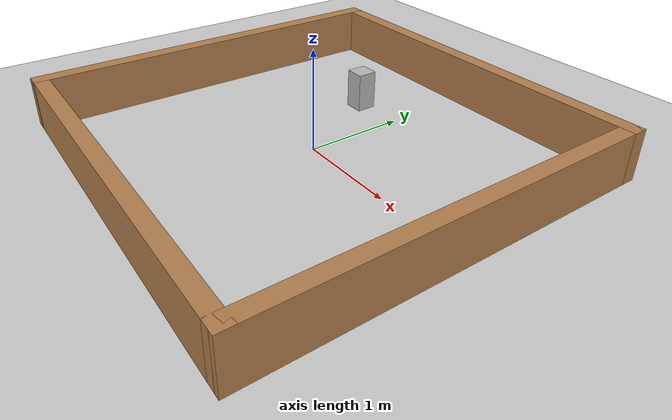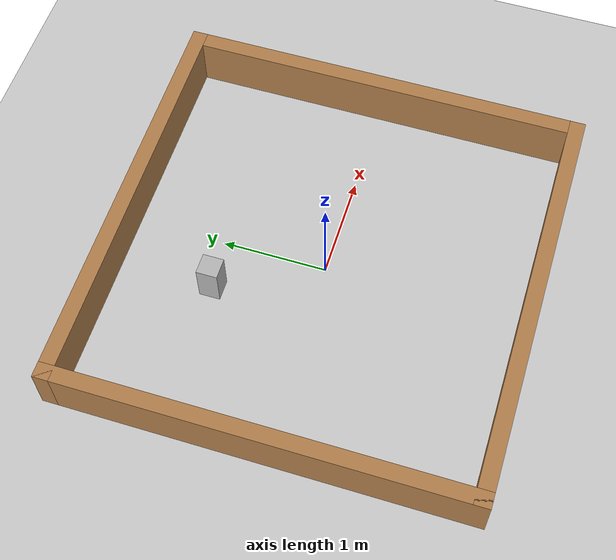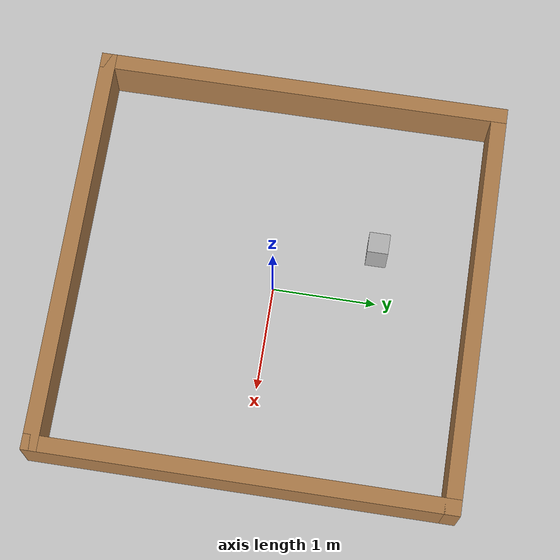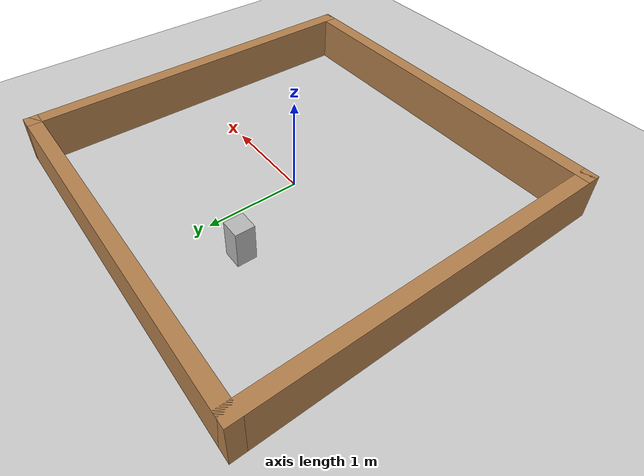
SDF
<sdf version="1.6">
 <world name="default">
  <light name="sun" type="directional">
   <pose>0 0 10 0 -0 0</pose>
   <diffuse>0.8 0.8 0.8 1</diffuse>
   <specular>0.1 0.1 0.1 1</specular>
   <attenuation>
    <range>1000</range>
    <constant>0.9</constant>
    <linear>0.01</linear>
    <quadratic>0.001</quadratic>
   </attenuation>
   <direction>-0.5 0.5 -1</direction>
  </light>
  <model name="ground_plane">
   <static>1</static>
   <link name="link">
    <collision name="collision">
     <geometry><plane><normal>0 0 1</normal><size>100 100</size></plane></geometry>
     <surface><friction><ode><mu>100</mu><mu2>50</mu2></ode></friction></surface>
    </collision>
    <visual name="visual">
     <cast_shadows>0</cast_shadows>
     <geometry><plane><normal>0 0 1</normal><size>100 100</size></plane></geometry>
     <material>
      <script><uri>file://media/materials/scripts/gazebo.material</uri><name>Gazebo/Grey</name></script>
     </material>
    </visual>
   </link>
  </model>
  <physics name="default_physics" default="0" type="ode">
   <real_time_update_rate>1000</real_time_update_rate>
   <max_step_size>0.001</max_step_size>
   <real_time_factor>1</real_time_factor>
   <ode>
    <solver>
     <type>quick</type>
     <iters>150</iters>
     <precon_iters>0</precon_iters>
     <sor>1.4</sor>
     <use_dynamic_moi_rescaling>1</use_dynamic_moi_rescaling>
    </solver>
    <constraints>
     <cfm>1e-05</cfm>
     <erp>0.2</erp>
     <contact_max_correcting_vel>2000</contact_max_correcting_vel>
     <contact_surface_layer>0.01</contact_surface_layer>
    </constraints>
   </ode>
  </physics>
  <model name="box">
   <pose>-0.483784 0.944585 0.200723 1.2e-05 0 0.000996</pose>
   <link name="link">
    <collision name="collision">
     <geometry><box><size>0.197081 0.200061 0.401444</size></box></geometry>
    </collision>
    <visual name="visual"><geometry><box><size>0.197081 0.200061 0.401444</size></box></geometry></visual>
    <inertial>
     <inertia><ixx>1</ixx><ixy>0</ixy><ixz>0</ixz><iyy>1</iyy><iyz>0</iyz><izz>1</izz></inertia>
     <mass>1</mass>
    </inertial>
   </link>
  </model>
  <plugin name="model_push" filename="libmodel_push.so"/>
  <model name="turtlebot3_square">
   <link name="Wall_0">
    <collision name="Wall_0_Collision">
     <geometry><box><size>4 0.15 0.5</size></box></geometry>
     <pose>0 0 0.25 0 -0 0</pose>
    </collision>
    <visual name="Wall_0_Visual">
     <pose>0 0 0.25 0 -0 0</pose>
     <geometry><box><size>4 0.15 0.5</size></box></geometry>
     <material>
      <script><uri>file://media/materials/scripts/gazebo.material</uri><name>Gazebo/Wood</name></script>
      <ambient>1 1 1 1</ambient>
     </material>
    </visual>
    <pose>0 1.925 0 0 -0 0</pose>
   </link>
   <link name="Wall_2">
    <collision name="Wall_2_Collision">
     <geometry><box><size>4 0.15 0.5</size></box></geometry>
     <pose>0 0 0.25 0 -0 0</pose>
    </collision>
    <visual name="Wall_2_Visual">
     <pose>0 0 0.25 0 -0 0</pose>
     <geometry><box><size>4 0.15 0.5</size></box></geometry>
     <material>
      <script><uri>file://media/materials/scripts/gazebo.material</uri><name>Gazebo/Wood</name></script>
      <ambient>1 1 1 1</ambient>
     </material>
    </visual>
    <pose>-1.925 0 0 0 0 -1.5708</pose>
   </link>
   <link name="Wall_3">
    <collision name="Wall_3_Collision">
     <geometry><box><size>4 0.15 0.5</size></box></geometry>
     <pose>0 0 0.25 0 -0 0</pose>
    </collision>
    <visual name="Wall_3_Visual">
     <pose>0 0 0.25 0 -0 0</pose>
     <geometry><box><size>4 0.15 0.5</size></box></geometry>
     <material>
      <script><uri>file://media/materials/scripts/gazebo.material</uri><name>Gazebo/Wood</name></script>
      <ambient>1 1 1 1</ambient>
     </material>
    </visual>
    <pose>0 -1.925 0 0 -0 0</pose>
   </link>
   <link name="Wall_4">
    <collision name="Wall_4_Collision">
     <geometry><box><size>4 0.15 0.5</size></box></geometry>
     <pose>0 0 0.25 0 -0 0</pose>
    </collision>
    <visual name="Wall_4_Visual">
     <pose>0 0 0.25 0 -0 0</pose>
     <geometry><box><size>4 0.15 0.5</size></box></geometry>
     <material>
      <script><uri>file://media/materials/scripts/gazebo.material</uri><name>Gazebo/Wood</name></script>
      <ambient>1 1 1 1</ambient>
     </material>
    </visual>
    <pose>1.925 0 0 0 -0 1.5708</pose>
   </link>
   <static>1</static>
  </model>
  <scene><ambient>0.4 0.4 0.4 1</ambient><background>0.7 0.7 0.7 1</background><shadows>1</shadows></scene>
  <gravity>0 0 -9.8</gravity>
  <magnetic_field>6e-06 2.3e-05 -4.2e-05</magnetic_field>
  <atmosphere type="adiabatic"/>
  <spherical_coordinates>
   <surface_model>EARTH_WGS84</surface_model>
   <latitude_deg>0</latitude_deg>
   <longitude_deg>0</longitude_deg>
   <elevation>0</elevation>
   <heading_deg>0</heading_deg>
  </spherical_coordinates>
 </world>
</sdf>
